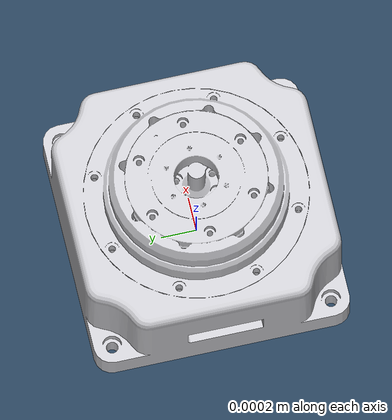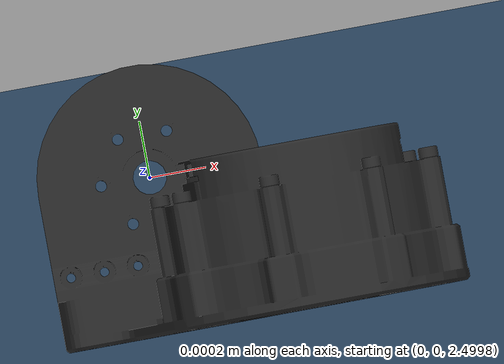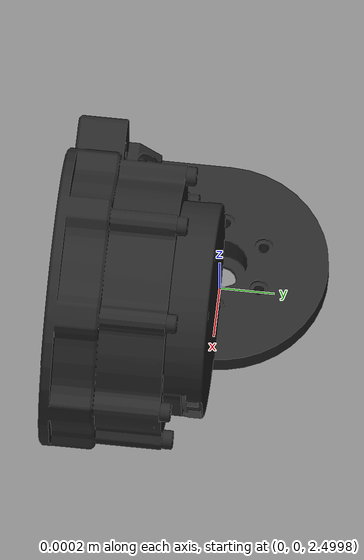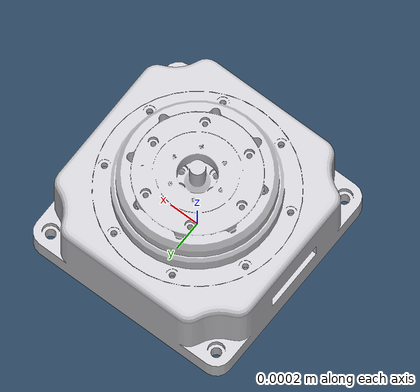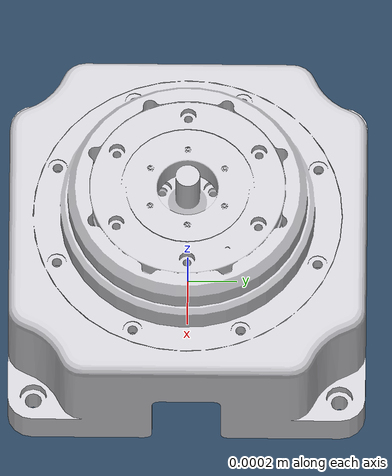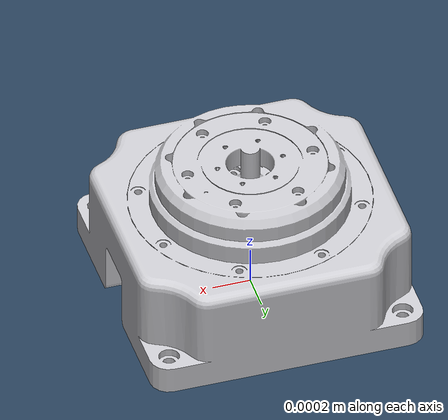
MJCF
<mujoco model="6dof_arm_no_self_collision">
    <compiler angle="degree" meshdir="meshes/" autolimits="true"/>

    <option gravity="0 0 -9.81" timestep="0.001">
        <flag contact="enable" energy="enable"/>
    </option>

    <asset>
        <mesh name="base_mesh" file="base_link.stl" scale="0.01 0.01 0.01"/>
        <mesh name="shoulder_mesh" file="shoulder.stl" scale="0.01 0.01 0.01"/>
        <mesh name="arm_link1_mesh" file="arm_link1.stl" scale="0.01 0.01 0.01"/>
        <mesh name="elbow_mesh" file="elbow.stl" scale="0.01 0.01 0.01"/>
        <mesh name="arm_link2_mesh" file="arm_link2.stl" scale="0.01 0.01 0.01"/>
        <mesh name="wrist1_mesh" file="wrist1.stl" scale="0.01 0.01 0.01"/>
        <mesh name="wrist2_mesh" file="wrist2.stl" scale="0.01 0.01 0.01"/>

        <material name="aluminum" rgba="0.8 0.8 0.82 1"/>
        <material name="carbon" rgba="0.15 0.15 0.15 1"/>
        <material name="camera_red" rgba="1 0 0 1"/>

        <texture type="skybox" builtin="gradient" rgb1="0.3 0.5 0.7" rgb2="0 0 0" width="512" height="512"/>
        <texture name="grid" type="2d" builtin="checker" rgb1=".1 .2 .3" rgb2=".2 .3 .4" width="300" height="300" mark="edge" markrgb=".2 .3 .4"/>
        <material name="grid" texture="grid" texrepeat="1 1" texuniform="true"/>
    </asset>

    <worldbody>
        <light diffuse=".8 .8 .8" pos="0 0 300" dir="0 0 -1"/>

        <camera name="fixed_view" pos="10 10 10" quat="0.48 0.21 0.44 0.72"/>

        <geom name="floor" type="plane" size="500 500 .5" material="grid" condim="3" friction="1 0.005 0.0001" contype="2" conaffinity="1"/>

        <body name="base" pos="0 0 0">
            <geom type="mesh" mesh="base_mesh" material="aluminum" contype="1" conaffinity="2"/>

            <body name="shoulder" pos="0 0 2.5">
                <inertial pos="0 0 -0.2" mass="0.55" diaginertia="0.01 0.01 0.01"/>
                <joint name="joint1" type="hinge" axis="0 0 1" range="-180 180" damping="0.2"/>
                <geom type="mesh" mesh="shoulder_mesh" material="carbon" contype="1" conaffinity="2"/>

            </body>
        </body>
    </worldbody>

</mujoco>
